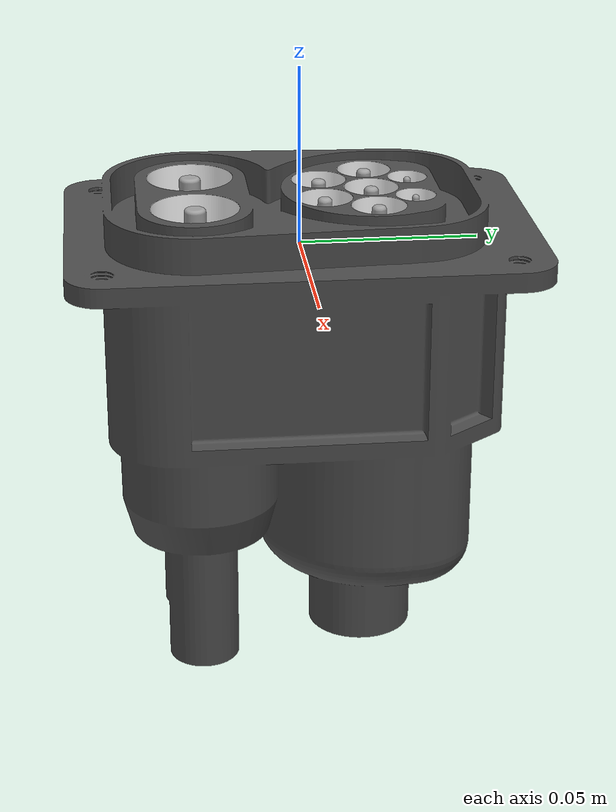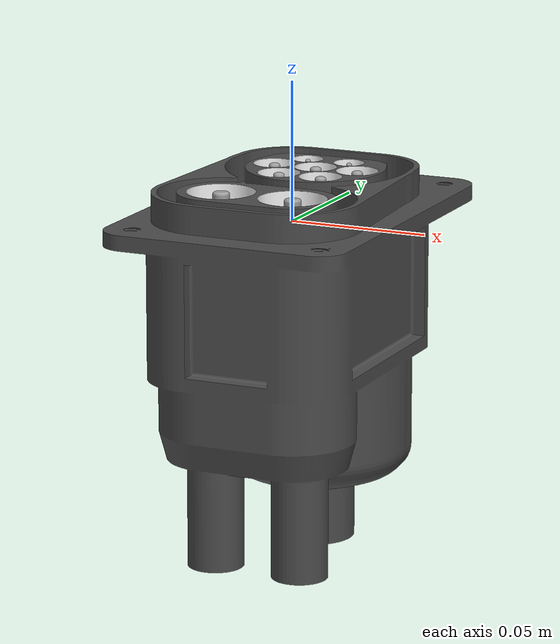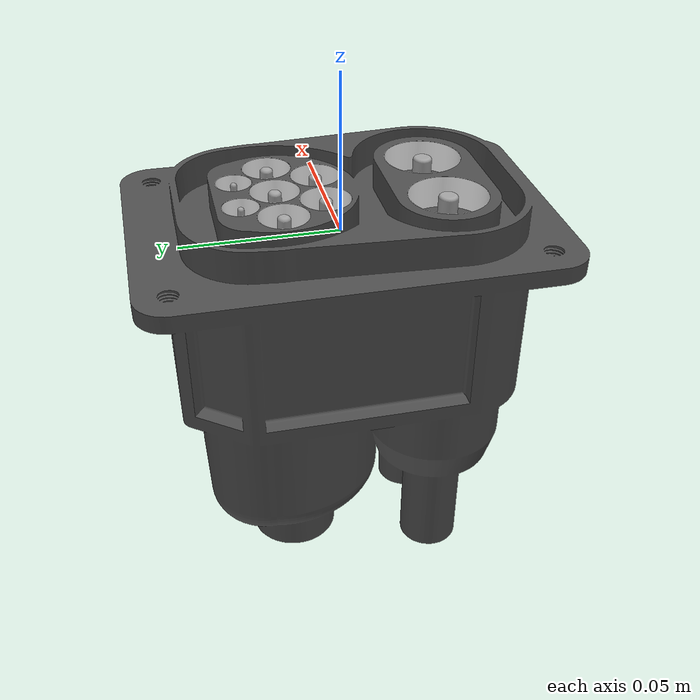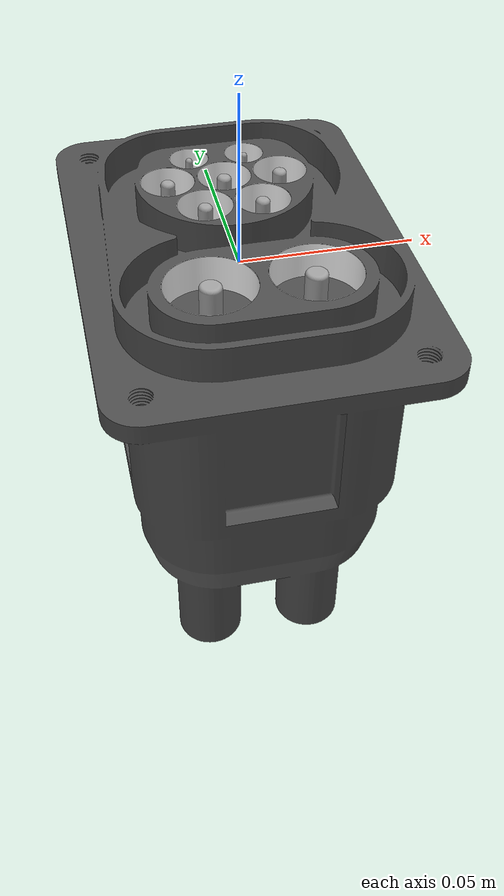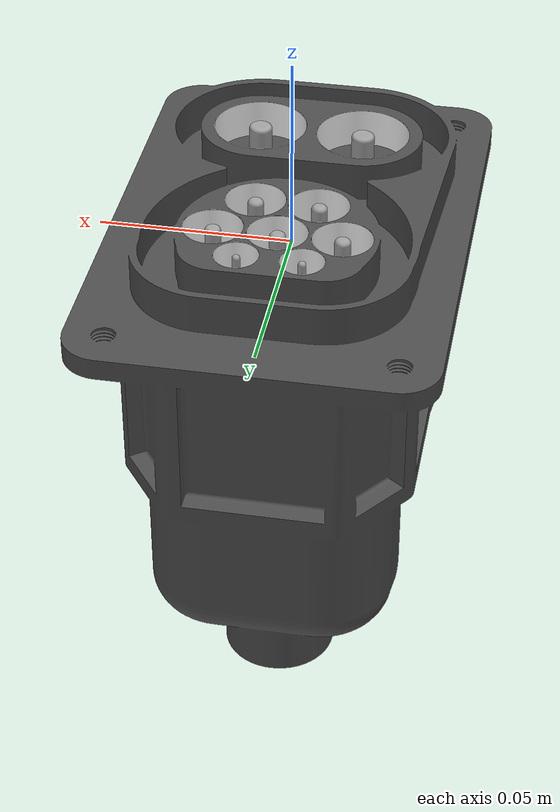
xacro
<?xml version="1.0" ?>
<robot name="plug_socket" xmlns:xacro="http://www.ros.org/wiki/xacro">

<xacro:include filename="$(find plug_test)/urdf/materials.xacro" />
<xacro:include filename="$(find plug_test)/urdf/plug_socket.trans" />
<xacro:include filename="$(find plug_test)/urdf/plug_socket.gazebo" />
<link name="base_link">
  <inertial>
    <origin xyz="3.796503005933315e-09 -0.0007312076854644843 -0.04031263628920165" rpy="0 0 0"/>
    <mass value="5.475788709094364"/>
    <inertia ixx="0.010551" iyy="0.007818" izz="0.006815" ixy="-0.0" iyz="0.000244" ixz="0.0"/>
  </inertial>
  <visual>
    <origin xyz="0 0 0" rpy="0 0 0"/>
    <geometry>
      <mesh filename="package://plug_test/meshes/base_link.stl" scale="0.001 0.001 0.001"/>
    </geometry>
    <material name="opaque777777"/>
  </visual>
  <collision>
    <origin xyz="0 0 -0.05" rpy="0 0 0"/>
    <geometry>
      <box size="0.1 0.14 0.14"/>
    </geometry>
  </collision>
</link>

<link name="Component8_1">
  <inertial>
    <origin xyz="-1.9468628098540108e-13 -2.0816681711721685e-17 0.004836206896551742" rpy="0 0 0"/>
    <mass value="0.00023839452252989463"/>
    <inertia ixx="0.0" iyy="0.0" izz="0.0" ixy="-0.0" iyz="0.0" ixz="-0.0"/>
  </inertial>
  <visual>
    <origin xyz="0.008 -0.0312 -0.0055" rpy="0 0 0"/>
    <geometry>
      <mesh filename="package://plug_test/meshes/Component8_1.stl" scale="0.001 0.001 0.001"/>
    </geometry>
    <material name="steel_satin"/>
  </visual>
  <collision>
    <origin xyz="0.008 -0.0312 -0.0055" rpy="0 0 0"/>
    <geometry>
      <mesh filename="package://plug_test/meshes/Component8_1.stl" scale="0.001 0.001 0.001"/>
    </geometry>
  </collision>
</link>

<link name="Component8_2">
  <inertial>
    <origin xyz="-1.9471750600796867e-13 -2.0816681711721685e-17 0.004836206896551738" rpy="0 0 0"/>
    <mass value="0.00023839452252989463"/>
    <inertia ixx="0.0" iyy="0.0" izz="0.0" ixy="-0.0" iyz="0.0" ixz="-0.0"/>
  </inertial>
  <visual>
    <origin xyz="-0.008 -0.0312 -0.0055" rpy="0 0 0"/>
    <geometry>
      <mesh filename="package://plug_test/meshes/Component8_2.stl" scale="0.001 0.001 0.001"/>
    </geometry>
    <material name="steel_satin"/>
  </visual>
  <collision>
    <origin xyz="-0.008 -0.0312 -0.0055" rpy="0 0 0"/>
    <geometry>
      <mesh filename="package://plug_test/meshes/Component8_2.stl" scale="0.001 0.001 0.001"/>
    </geometry>
  </collision>
</link>

<link name="Component9_4">
  <inertial>
    <origin xyz="3.469446951953614e-18 -2.7755575615628914e-17 0.004871199697924683" rpy="0 0 0"/>
    <mass value="0.0009602983078098164"/>
    <inertia ixx="0.0" iyy="0.0" izz="0.0" ixy="-0.0" iyz="0.0" ixz="-0.0"/>
  </inertial>
  <visual>
    <origin xyz="0.016 -0.02 -0.0055" rpy="0 0 0"/>
    <geometry>
      <mesh filename="package://plug_test/meshes/Component9_4.stl" scale="0.001 0.001 0.001"/>
    </geometry>
    <material name="steel_satin"/>
  </visual>
  <collision>
    <origin xyz="0.016 -0.02 -0.0055" rpy="0 0 0"/>
    <geometry>
      <mesh filename="package://plug_test/meshes/Component9_4.stl" scale="0.001 0.001 0.001"/>
    </geometry>
  </collision>
</link>

<link name="Component9_2">
  <inertial>
    <origin xyz="3.8163916471489756e-17 -2.5153490401663703e-17 0.004871199697924707" rpy="0 0 0"/>
    <mass value="0.0009602983078098164"/>
    <inertia ixx="0.0" iyy="0.0" izz="0.0" ixy="-0.0" iyz="0.0" ixz="-0.0"/>
  </inertial>
  <visual>
    <origin xyz="0.008 -0.0062 -0.0055" rpy="0 0 0"/>
    <geometry>
      <mesh filename="package://plug_test/meshes/Component9_2.stl" scale="0.001 0.001 0.001"/>
    </geometry>
    <material name="steel_satin"/>
  </visual>
  <collision>
    <origin xyz="0.008 -0.0062 -0.0055" rpy="0 0 0"/>
    <geometry>
      <mesh filename="package://plug_test/meshes/Component9_2.stl" scale="0.001 0.001 0.001"/>
    </geometry>
  </collision>
</link>

<link name="Component9_1">
  <inertial>
    <origin xyz="8.881784197001253e-18 -1.0408340855860843e-17 0.004871199697924709" rpy="0 0 0"/>
    <mass value="0.0009602983078098164"/>
    <inertia ixx="0.0" iyy="0.0" izz="0.0" ixy="-0.0" iyz="0.0" ixz="-0.0"/>
  </inertial>
  <visual>
    <origin xyz="-0.0 -0.02 -0.0055" rpy="0 0 0"/>
    <geometry>
      <mesh filename="package://plug_test/meshes/Component9_1.stl" scale="0.001 0.001 0.001"/>
    </geometry>
    <material name="steel_satin"/>
  </visual>
  <collision>
    <origin xyz="-0.0 -0.02 -0.0055" rpy="0 0 0"/>
    <geometry>
      <mesh filename="package://plug_test/meshes/Component9_1.stl" scale="0.001 0.001 0.001"/>
    </geometry>
  </collision>
</link>

<link name="Component9_5">
  <inertial>
    <origin xyz="3.469446951953614e-18 -1.0408340855860843e-17 0.004871199697924702" rpy="0 0 0"/>
    <mass value="0.0009602983078098164"/>
    <inertia ixx="0.0" iyy="0.0" izz="0.0" ixy="-0.0" iyz="0.0" ixz="-0.0"/>
  </inertial>
  <visual>
    <origin xyz="-0.016 -0.02 -0.0055" rpy="0 0 0"/>
    <geometry>
      <mesh filename="package://plug_test/meshes/Component9_5.stl" scale="0.001 0.001 0.001"/>
    </geometry>
    <material name="steel_satin"/>
  </visual>
  <collision>
    <origin xyz="-0.016 -0.02 -0.0055" rpy="0 0 0"/>
    <geometry>
      <mesh filename="package://plug_test/meshes/Component9_5.stl" scale="0.001 0.001 0.001"/>
    </geometry>
  </collision>
</link>

<link name="Component9_3">
  <inertial>
    <origin xyz="1.5612511283791264e-17 -7.806255641895632e-18 0.004871199697924709" rpy="0 0 0"/>
    <mass value="0.0009602983078098164"/>
    <inertia ixx="0.0" iyy="0.0" izz="0.0" ixy="-0.0" iyz="0.0" ixz="-0.0"/>
  </inertial>
  <visual>
    <origin xyz="-0.008 -0.0062 -0.0055" rpy="0 0 0"/>
    <geometry>
      <mesh filename="package://plug_test/meshes/Component9_3.stl" scale="0.001 0.001 0.001"/>
    </geometry>
    <material name="steel_satin"/>
  </visual>
  <collision>
    <origin xyz="-0.008 -0.0062 -0.0055" rpy="0 0 0"/>
    <geometry>
      <mesh filename="package://plug_test/meshes/Component9_3.stl" scale="0.001 0.001 0.001"/>
    </geometry>
  </collision>
</link>

<link name="Component10_1">
  <inertial>
    <origin xyz="-5.722540497021811e-13 6.938893903907228e-18 0.004936001117135472" rpy="0 0 0"/>
    <mass value="0.0021901450942100275"/>
    <inertia ixx="0.0" iyy="0.0" izz="0.0" ixy="0.0" iyz="0.0" ixz="-0.0"/>
  </inertial>
  <visual>
    <origin xyz="0.0135 0.0295 -0.0055" rpy="0 0 0"/>
    <geometry>
      <mesh filename="package://plug_test/meshes/Component10_1.stl" scale="0.001 0.001 0.001"/>
    </geometry>
    <material name="steel_satin"/>
  </visual>
  <collision>
    <origin xyz="0.0135 0.0295 -0.0055" rpy="0 0 0"/>
    <geometry>
      <mesh filename="package://plug_test/meshes/Component10_1.stl" scale="0.001 0.001 0.001"/>
    </geometry>
  </collision>
</link>

<link name="Component10_2">
  <inertial>
    <origin xyz="-5.722471108082772e-13 6.938893903907228e-18 0.004936001117135472" rpy="0 0 0"/>
    <mass value="0.0021901450942100275"/>
    <inertia ixx="0.0" iyy="0.0" izz="0.0" ixy="-0.0" iyz="-0.0" ixz="-0.0"/>
  </inertial>
  <visual>
    <origin xyz="-0.0135 0.0295 -0.0055" rpy="0 0 0"/>
    <geometry>
      <mesh filename="package://plug_test/meshes/Component10_2.stl" scale="0.001 0.001 0.001"/>
    </geometry>
    <material name="steel_satin"/>
  </visual>
  <collision>
    <origin xyz="-0.0135 0.0295 -0.0055" rpy="0 0 0"/>
    <geometry>
      <mesh filename="package://plug_test/meshes/Component10_2.stl" scale="0.001 0.001 0.001"/>
    </geometry>
  </collision>
</link>

<link name="Component12_1">
  <inertial>
    <origin xyz="-2.7533531010703883e-15 -9.020562075079397e-17 0.0050000000000000894" rpy="0 0 0"/>
    <mass value="0.0001855778050383416"/>
    <inertia ixx="0.0" iyy="0.0" izz="0.0" ixy="-0.0" iyz="0.0" ixz="0.0"/>
  </inertial>
  <visual>
    <origin xyz="-0.0 -0.02 -0.0055" rpy="0 0 0"/>
    <geometry>
      <mesh filename="package://plug_test/meshes/Component12_1.stl" scale="0.001 0.001 0.001"/>
    </geometry>
    <material name="opaque255255255"/>
  </visual>
  <collision>
    <origin xyz="-0.0 -0.02 -0.0055" rpy="0 0 0"/>
    <geometry>
      <mesh filename="package://plug_test/meshes/Component12_1.stl" scale="0.001 0.001 0.001"/>
    </geometry>
  </collision>
</link>

<link name="Component12_2">
  <inertial>
    <origin xyz="-2.768618667658984e-15 -9.020562075079397e-17 0.0050000000000000894" rpy="0 0 0"/>
    <mass value="0.0001855778050383416"/>
    <inertia ixx="0.0" iyy="0.0" izz="0.0" ixy="-0.0" iyz="0.0" ixz="0.0"/>
  </inertial>
  <visual>
    <origin xyz="0.016 -0.02 -0.0055" rpy="0 0 0"/>
    <geometry>
      <mesh filename="package://plug_test/meshes/Component12_2.stl" scale="0.001 0.001 0.001"/>
    </geometry>
    <material name="opaque255255255"/>
  </visual>
  <collision>
    <origin xyz="0.016 -0.02 -0.0055" rpy="0 0 0"/>
    <geometry>
      <mesh filename="package://plug_test/meshes/Component12_2.stl" scale="0.001 0.001 0.001"/>
    </geometry>
  </collision>
</link>

<link name="Component12_3">
  <inertial>
    <origin xyz="-2.7582103268031233e-15 -9.020562075079397e-17 0.0050000000000000894" rpy="0 0 0"/>
    <mass value="0.0001855778050383416"/>
    <inertia ixx="0.0" iyy="0.0" izz="0.0" ixy="-0.0" iyz="0.0" ixz="0.0"/>
  </inertial>
  <visual>
    <origin xyz="-0.016 -0.02 -0.0055" rpy="0 0 0"/>
    <geometry>
      <mesh filename="package://plug_test/meshes/Component12_3.stl" scale="0.001 0.001 0.001"/>
    </geometry>
    <material name="opaque255255255"/>
  </visual>
  <collision>
    <origin xyz="-0.016 -0.02 -0.0055" rpy="0 0 0"/>
    <geometry>
      <mesh filename="package://plug_test/meshes/Component12_3.stl" scale="0.001 0.001 0.001"/>
    </geometry>
  </collision>
</link>

<link name="Component13_1">
  <inertial>
    <origin xyz="-1.3183898417423734e-16 -3.9898639947466563e-17 0.0050000000000000044" rpy="0 0 0"/>
    <mass value="0.00018804395527147638"/>
    <inertia ixx="0.0" iyy="0.0" izz="0.0" ixy="-0.0" iyz="-0.0" ixz="0.0"/>
  </inertial>
  <visual>
    <origin xyz="0.008 -0.0062 -0.0055" rpy="0 0 0"/>
    <geometry>
      <mesh filename="package://plug_test/meshes/Component13_1.stl" scale="0.001 0.001 0.001"/>
    </geometry>
    <material name="opaque255255255"/>
  </visual>
  <collision>
    <origin xyz="0.008 -0.0062 -0.0055" rpy="0 0 0"/>
    <geometry>
      <mesh filename="package://plug_test/meshes/Component13_1.stl" scale="0.001 0.001 0.001"/>
    </geometry>
  </collision>
</link>

<link name="Component13_2">
  <inertial>
    <origin xyz="-1.1796119636642288e-16 -3.9898639947466563e-17 0.0050000000000000044" rpy="0 0 0"/>
    <mass value="0.00018804395527147638"/>
    <inertia ixx="0.0" iyy="0.0" izz="0.0" ixy="-0.0" iyz="-0.0" ixz="0.0"/>
  </inertial>
  <visual>
    <origin xyz="-0.008 -0.0062 -0.0055" rpy="0 0 0"/>
    <geometry>
      <mesh filename="package://plug_test/meshes/Component13_2.stl" scale="0.001 0.001 0.001"/>
    </geometry>
    <material name="opaque255255255"/>
  </visual>
  <collision>
    <origin xyz="-0.008 -0.0062 -0.0055" rpy="0 0 0"/>
    <geometry>
      <mesh filename="package://plug_test/meshes/Component13_2.stl" scale="0.001 0.001 0.001"/>
    </geometry>
  </collision>
</link>

<link name="Component14_1">
  <inertial>
    <origin xyz="5.620504062164855e-16 -1.0408340855860843e-16 0.004999999999999968" rpy="0 0 0"/>
    <mass value="0.00013625480037697272"/>
    <inertia ixx="0.0" iyy="0.0" izz="0.0" ixy="-0.0" iyz="0.0" ixz="-0.0"/>
  </inertial>
  <visual>
    <origin xyz="0.008 -0.0312 -0.0055" rpy="0 0 0"/>
    <geometry>
      <mesh filename="package://plug_test/meshes/Component14_1.stl" scale="0.001 0.001 0.001"/>
    </geometry>
    <material name="opaque255255255"/>
  </visual>
  <collision>
    <origin xyz="0.008 -0.0312 -0.0055" rpy="0 0 0"/>
    <geometry>
      <mesh filename="package://plug_test/meshes/Component14_1.stl" scale="0.001 0.001 0.001"/>
    </geometry>
  </collision>
</link>

<link name="Component14_2">
  <inertial>
    <origin xyz="5.759281940243e-16 -1.0408340855860843e-16 0.004999999999999968" rpy="0 0 0"/>
    <mass value="0.00013625480037697272"/>
    <inertia ixx="0.0" iyy="0.0" izz="0.0" ixy="-0.0" iyz="0.0" ixz="-0.0"/>
  </inertial>
  <visual>
    <origin xyz="-0.008 -0.0312 -0.0055" rpy="0 0 0"/>
    <geometry>
      <mesh filename="package://plug_test/meshes/Component14_2.stl" scale="0.001 0.001 0.001"/>
    </geometry>
    <material name="opaque255255255"/>
  </visual>
  <collision>
    <origin xyz="-0.008 -0.0312 -0.0055" rpy="0 0 0"/>
    <geometry>
      <mesh filename="package://plug_test/meshes/Component14_2.stl" scale="0.001 0.001 0.001"/>
    </geometry>
  </collision>
</link>

<link name="Component15_1">
  <inertial>
    <origin xyz="7.077671781985373e-16 3.885780586188048e-16 0.004999999999999963" rpy="0 0 0"/>
    <mass value="0.0002965545655264604"/>
    <inertia ixx="0.0" iyy="0.0" izz="0.0" ixy="0.0" iyz="-0.0" ixz="-0.0"/>
  </inertial>
  <visual>
    <origin xyz="-0.0135 0.0295 -0.0055" rpy="0 0 0"/>
    <geometry>
      <mesh filename="package://plug_test/meshes/Component15_1.stl" scale="0.001 0.001 0.001"/>
    </geometry>
    <material name="opaque255255255"/>
  </visual>
  <collision>
    <origin xyz="-0.0135 0.0295 -0.0055" rpy="0 0 0"/>
    <geometry>
      <mesh filename="package://plug_test/meshes/Component15_1.stl" scale="0.001 0.001 0.001"/>
    </geometry>
  </collision>
</link>

<link name="Component15_2">
  <inertial>
    <origin xyz="7.147060721024445e-16 3.885780586188048e-16 0.004999999999999963" rpy="0 0 0"/>
    <mass value="0.0002965545655264604"/>
    <inertia ixx="0.0" iyy="0.0" izz="0.0" ixy="0.0" iyz="-0.0" ixz="-0.0"/>
  </inertial>
  <visual>
    <origin xyz="0.0135 0.0295 -0.0055" rpy="0 0 0"/>
    <geometry>
      <mesh filename="package://plug_test/meshes/Component15_2.stl" scale="0.001 0.001 0.001"/>
    </geometry>
    <material name="opaque255255255"/>
  </visual>
  <collision>
    <origin xyz="0.0135 0.0295 -0.0055" rpy="0 0 0"/>
    <geometry>
      <mesh filename="package://plug_test/meshes/Component15_2.stl" scale="0.001 0.001 0.001"/>
    </geometry>
  </collision>
</link>

<joint name="Rigid19" type="fixed">
  <origin xyz="-0.008 0.0312 0.0055" rpy="0 0 0"/>
  <parent link="base_link"/>
  <child link="Component8_1"/>
</joint>

<joint name="Rigid20" type="fixed">
  <origin xyz="0.008 0.0312 0.0055" rpy="0 0 0"/>
  <parent link="base_link"/>
  <child link="Component8_2"/>
</joint>

<joint name="Rigid21" type="fixed">
  <origin xyz="-0.016 0.02 0.0055" rpy="0 0 0"/>
  <parent link="base_link"/>
  <child link="Component9_4"/>
</joint>

<joint name="Rigid22" type="fixed">
  <origin xyz="-0.008 0.0062 0.0055" rpy="0 0 0"/>
  <parent link="base_link"/>
  <child link="Component9_2"/>
</joint>

<joint name="Rigid23" type="fixed">
  <origin xyz="0.0 0.02 0.0055" rpy="0 0 0"/>
  <parent link="base_link"/>
  <child link="Component9_1"/>
</joint>

<joint name="Rigid24" type="fixed">
  <origin xyz="0.016 0.02 0.0055" rpy="0 0 0"/>
  <parent link="base_link"/>
  <child link="Component9_5"/>
</joint>

<joint name="Rigid25" type="fixed">
  <origin xyz="0.008 0.0062 0.0055" rpy="0 0 0"/>
  <parent link="base_link"/>
  <child link="Component9_3"/>
</joint>

<joint name="Rigid26" type="fixed">
  <origin xyz="-0.0135 -0.0295 0.0055" rpy="0 0 0"/>
  <parent link="base_link"/>
  <child link="Component10_1"/>
</joint>

<joint name="Rigid27" type="fixed">
  <origin xyz="0.0135 -0.0295 0.0055" rpy="0 0 0"/>
  <parent link="base_link"/>
  <child link="Component10_2"/>
</joint>

<joint name="Rigid28" type="fixed">
  <origin xyz="0.0 0.02 0.0055" rpy="0 0 0"/>
  <parent link="base_link"/>
  <child link="Component12_1"/>
</joint>

<joint name="Rigid29" type="fixed">
  <origin xyz="-0.016 0.02 0.0055" rpy="0 0 0"/>
  <parent link="base_link"/>
  <child link="Component12_2"/>
</joint>

<joint name="Rigid30" type="fixed">
  <origin xyz="0.016 0.02 0.0055" rpy="0 0 0"/>
  <parent link="base_link"/>
  <child link="Component12_3"/>
</joint>

<joint name="Rigid31" type="fixed">
  <origin xyz="-0.008 0.0062 0.0055" rpy="0 0 0"/>
  <parent link="base_link"/>
  <child link="Component13_1"/>
</joint>

<joint name="Rigid32" type="fixed">
  <origin xyz="0.008 0.0062 0.0055" rpy="0 0 0"/>
  <parent link="base_link"/>
  <child link="Component13_2"/>
</joint>

<joint name="Rigid33" type="fixed">
  <origin xyz="-0.008 0.0312 0.0055" rpy="0 0 0"/>
  <parent link="base_link"/>
  <child link="Component14_1"/>
</joint>

<joint name="Rigid34" type="fixed">
  <origin xyz="0.008 0.0312 0.0055" rpy="0 0 0"/>
  <parent link="base_link"/>
  <child link="Component14_2"/>
</joint>

<joint name="Rigid35" type="fixed">
  <origin xyz="0.0135 -0.0295 0.0055" rpy="0 0 0"/>
  <parent link="base_link"/>
  <child link="Component15_1"/>
</joint>

<joint name="Rigid36" type="fixed">
  <origin xyz="-0.0135 -0.0295 0.0055" rpy="0 0 0"/>
  <parent link="base_link"/>
  <child link="Component15_2"/>
</joint>

</robot>

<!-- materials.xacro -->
<robot name="plug_socket" xmlns:xacro="http://www.ros.org/wiki/xacro" >

<material name="silver_default">
  <color rgba="0.700 0.700 0.700 1.000"/>
</material>
<material name="opaque777777">
  <color rgba="0.30196078431372547 0.30196078431372547 0.30196078431372547 1.0"/>
</material>
<material name="steel_satin">
  <color rgba="0.6274509803921569 0.6274509803921569 0.6274509803921569 1.0"/>
</material>
<material name="opaque255255255">
  <color rgba="1.0 1.0 1.0 1.0"/>
</material>

</robot>

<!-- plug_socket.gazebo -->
<robot name="plug_socket" xmlns:xacro="http://www.ros.org/wiki/xacro" >

<xacro:property name="body_color" value="Gazebo/White" />
<gazebo>
  <static>true</static>
</gazebo>
<gazebo reference="base_link">
  <material>Gazebo/DarkGrey</material>
  <mu1>0.2</mu1>
  <mu2>0.2</mu2>
  <selfCollide>true</selfCollide>
  <gravity>true</gravity>
</gazebo>

<gazebo reference="Component8_1">
  <material>${body_color}</material>
  <mu1>0.2</mu1>
  <mu2>0.2</mu2>
  <selfCollide>true</selfCollide>
</gazebo>

<gazebo reference="Component8_2">
  <material>${body_color}</material>
  <mu1>0.2</mu1>
  <mu2>0.2</mu2>
  <selfCollide>true</selfCollide>
</gazebo>

<gazebo reference="Component9_4">
  <material>${body_color}</material>
  <mu1>0.2</mu1>
  <mu2>0.2</mu2>
  <selfCollide>true</selfCollide>
</gazebo>

<gazebo reference="Component9_2">
  <material>${body_color}</material>
  <mu1>0.2</mu1>
  <mu2>0.2</mu2>
  <selfCollide>true</selfCollide>
</gazebo>

<gazebo reference="Component9_1">
  <material>${body_color}</material>
  <mu1>0.2</mu1>
  <mu2>0.2</mu2>
  <selfCollide>true</selfCollide>
</gazebo>

<gazebo reference="Component9_5">
  <material>${body_color}</material>
  <mu1>0.2</mu1>
  <mu2>0.2</mu2>
  <selfCollide>true</selfCollide>
</gazebo>

<gazebo reference="Component9_3">
  <material>${body_color}</material>
  <mu1>0.2</mu1>
  <mu2>0.2</mu2>
  <selfCollide>true</selfCollide>
</gazebo>

<gazebo reference="Component10_1">
  <material>${body_color}</material>
  <mu1>0.2</mu1>
  <mu2>0.2</mu2>
  <selfCollide>true</selfCollide>
</gazebo>

<gazebo reference="Component10_2">
  <material>${body_color}</material>
  <mu1>0.2</mu1>
  <mu2>0.2</mu2>
  <selfCollide>true</selfCollide>
</gazebo>

<gazebo reference="Component12_1">
  <material>${body_color}</material>
  <mu1>0.2</mu1>
  <mu2>0.2</mu2>
  <selfCollide>true</selfCollide>
</gazebo>

<gazebo reference="Component12_2">
  <material>${body_color}</material>
  <mu1>0.2</mu1>
  <mu2>0.2</mu2>
  <selfCollide>true</selfCollide>
</gazebo>

<gazebo reference="Component12_3">
  <material>${body_color}</material>
  <mu1>0.2</mu1>
  <mu2>0.2</mu2>
  <selfCollide>true</selfCollide>
</gazebo>

<gazebo reference="Component13_1">
  <material>${body_color}</material>
  <mu1>0.2</mu1>
  <mu2>0.2</mu2>
  <selfCollide>true</selfCollide>
</gazebo>

<gazebo reference="Component13_2">
  <material>${body_color}</material>
  <mu1>0.2</mu1>
  <mu2>0.2</mu2>
  <selfCollide>true</selfCollide>
</gazebo>

<gazebo reference="Component14_1">
  <material>${body_color}</material>
  <mu1>0.2</mu1>
  <mu2>0.2</mu2>
  <selfCollide>true</selfCollide>
</gazebo>

<gazebo reference="Component14_2">
  <material>${body_color}</material>
  <mu1>0.2</mu1>
  <mu2>0.2</mu2>
  <selfCollide>true</selfCollide>
</gazebo>

<gazebo reference="Component15_1">
  <material>${body_color}</material>
  <mu1>0.2</mu1>
  <mu2>0.2</mu2>
  <selfCollide>true</selfCollide>
</gazebo>

<gazebo reference="Component15_2">
  <material>${body_color}</material>
  <mu1>0.2</mu1>
  <mu2>0.2</mu2>
  <selfCollide>true</selfCollide>
</gazebo>

</robot>
